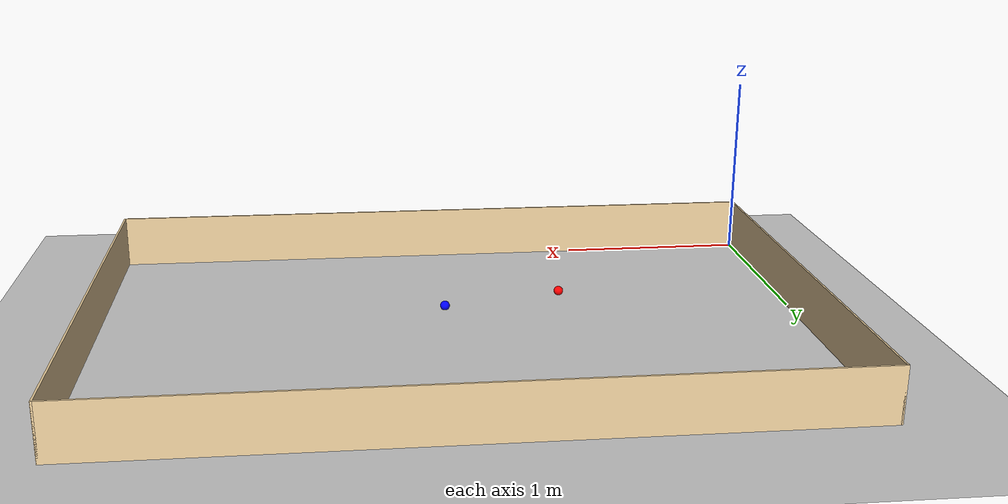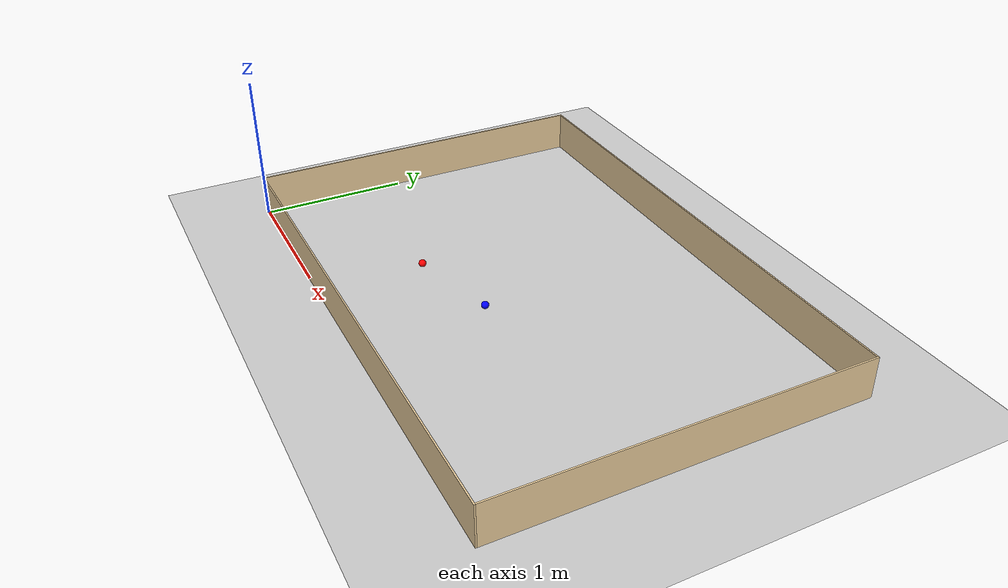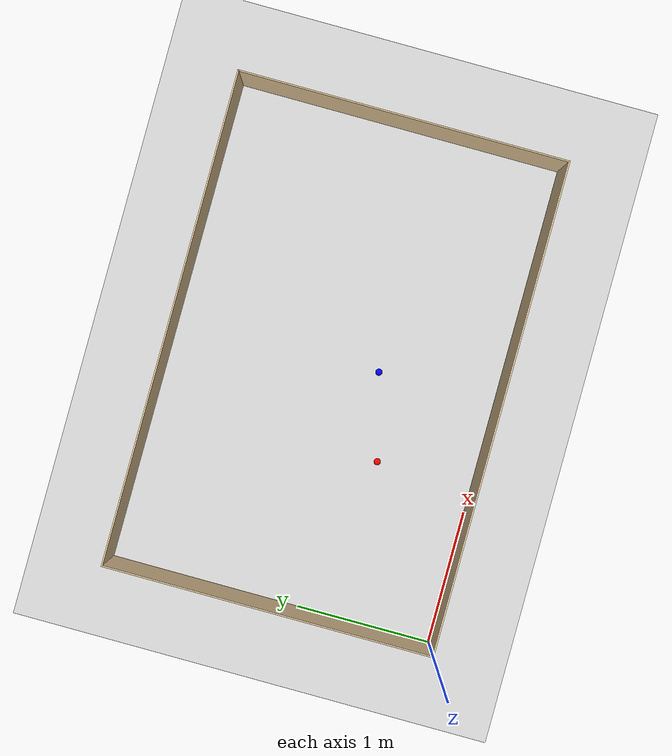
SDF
<?xml version="1.0" ?>
<sdf version="1.4">
  <world name="default">
    <scene>
      <ambient>0.5 0.5 0.5 1.0</ambient>
      <shadows>0</shadows>
    </scene>
    <include>
      <uri>model://ground_plane</uri>
    </include>
    <include>
      <uri>model://sun</uri>
    </include>

    <model name='sphere_blue'>
      <static>0</static>
      <link name='body'>
        <inertial>
          <mass>0.06</mass>
          <inertia>
            <ixx>0.001</ixx>
            <iyy>0.001</iyy>
            <izz>0.001</izz>
            <ixy>0</ixy>
            <ixz>0</ixz>
            <iyz>0</iyz>
          </inertia>
          <pose>0 0 0 0 -0 0</pose>
        </inertial>
        <visual name='vis'>
          <geometry>
            <mesh>
              <uri>model://sphere_blue/sphere.dae</uri>
            </mesh>
          </geometry>
        </visual>
        <collision name='col'>
          <pose>0 0 0.025 0 -0 0</pose>
          <geometry>
            <box>
              <size>0.05 0.05 0.05</size>
            </box>
          </geometry>
          <surface>
            <friction>
              <ode>
                <mu>0.1</mu>
                <mu2>0.1</mu2>
                <slip1>0.9</slip1>
                <slip2>0.9</slip2>
              </ode>
              <torsional>
                <ode/>
              </torsional>
            </friction>
            <contact>
              <ode/>
            </contact>
            <bounce/>
          </surface>
          <max_contacts>10</max_contacts>
        </collision>
        <self_collide>0</self_collide>
        <enable_wind>0</enable_wind>
        <kinematic>0</kinematic>
      </link>
      <pose>1.83413 0.884874 0 0 -0 0</pose>
    </model>
    <model name='sphere_red'>
      <static>0</static>
      <link name='body'>
        <inertial>
          <mass>0.06</mass>
          <inertia>
            <ixx>0.001</ixx>
            <iyy>0.001</iyy>
            <izz>0.001</izz>
            <ixy>0</ixy>
            <ixz>0</ixz>
            <iyz>0</iyz>
          </inertia>
          <pose>0 0 0 0 -0 0</pose>
        </inertial>
        <visual name='vis'>
          <geometry>
            <mesh>
              <uri>model://sphere_red/sphere.dae</uri>
            </mesh>
          </geometry>
        </visual>
        <collision name='col'>
          <pose>0 0 0.025 0 -0 0</pose>
          <geometry>
            <box>
              <size>0.05 0.05 0.05</size>
            </box>
          </geometry>
          <surface>
            <friction>
              <ode>
                <mu>0.1</mu>
                <mu2>0.1</mu2>
                <slip1>0.9</slip1>
                <slip2>0.9</slip2>
              </ode>
              <torsional>
                <ode/>
              </torsional>
            </friction>
            <contact>
              <ode/>
            </contact>
            <bounce/>
          </surface>
          <max_contacts>10</max_contacts>
        </collision>
        <self_collide>0</self_collide>
        <enable_wind>0</enable_wind>
        <kinematic>0</kinematic>
      </link>
      <pose>1.1934 0.7213 0 0 -0 0</pose>
    </model>

    <model name='outer_box'>
    <pose frame=''>1.81 1.21 0 0 -0 0</pose>
    <link name='Wall_0'>
      <collision name='Wall_0_Collision'>
        <geometry>
          <box>
            <size>3.63 0.01 0.28</size>
          </box>
        </geometry>
        <pose frame=''>0 0 0.14 0 -0 0</pose>
      </collision>
      <visual name='Wall_0_Visual'>
        <pose frame=''>0 0 0.14 0 -0 0</pose>
        <geometry>
          <box>
            <size>3.63 0.01 0.28</size>
          </box>
        </geometry>
        <material>
          <script>
            <uri>file://media/materials/scripts/gazebo.material</uri>
            <name>Gazebo/Grey</name>
          </script>
          <ambient>0.921569 0.807843 0.615686 1</ambient>
        </material>
        <meta>
          <layer>0</layer>
        </meta>
      </visual>
      <pose frame=''>0 1.21 0 0 -0 0</pose>
    </link>
    <link name='Wall_2'>
      <collision name='Wall_2_Collision'>
        <geometry>
          <box>
            <size>2.43 0.01 0.28</size>
          </box>
        </geometry>
        <pose frame=''>0 0 0.14 0 -0 0</pose>
      </collision>
      <visual name='Wall_2_Visual'>
        <pose frame=''>0 0 0.14 0 -0 0</pose>
        <geometry>
          <box>
            <size>2.43 0.01 0.28</size>
          </box>
        </geometry>
        <material>
          <script>
            <uri>file://media/materials/scripts/gazebo.material</uri>
            <name>Gazebo/Grey</name>
          </script>
          <ambient>0.921569 0.807843 0.615686 1</ambient>
        </material>
        <meta>
          <layer>0</layer>
        </meta>
      </visual>
      <pose frame=''>1.81 0 0 0 0 -1.5708</pose>
    </link>
    <link name='Wall_4'>
      <collision name='Wall_4_Collision'>
        <geometry>
          <box>
            <size>3.63 0.01 0.28</size>
          </box>
        </geometry>
        <pose frame=''>0 0 0.14 0 -0 0</pose>
      </collision>
      <visual name='Wall_4_Visual'>
        <pose frame=''>0 0 0.14 0 -0 0</pose>
        <geometry>
          <box>
            <size>3.63 0.01 0.28</size>
          </box>
        </geometry>
        <material>
          <script>
            <uri>file://media/materials/scripts/gazebo.material</uri>
            <name>Gazebo/Grey</name>
          </script>
          <ambient>0.921569 0.807843 0.615686 1</ambient>
        </material>
        <meta>
          <layer>0</layer>
        </meta>
      </visual>
      <pose frame=''>0 -1.21 0 0 -0 3.14159</pose>
    </link>
    <link name='Wall_6'>
      <collision name='Wall_6_Collision'>
        <geometry>
          <box>
            <size>2.43 0.01 0.28</size>
          </box>
        </geometry>
        <pose frame=''>0 0 0.14 0 -0 0</pose>
      </collision>
      <visual name='Wall_6_Visual'>
        <pose frame=''>0 0 0.14 0 -0 0</pose>
        <geometry>
          <box>
            <size>2.43 0.01 0.28</size>
          </box>
        </geometry>
        <material>
          <script>
            <uri>file://media/materials/scripts/gazebo.material</uri>
            <name>Gazebo/Grey</name>
          </script>
          <ambient>0.921569 0.807843 0.615686 1</ambient>
        </material>
        <meta>
          <layer>0</layer>
        </meta>
      </visual>
      <pose frame=''>-1.81 0 0 0 -0 1.5708</pose>
    </link>
    <static>1</static>
  </model>

  </world>
</sdf>
